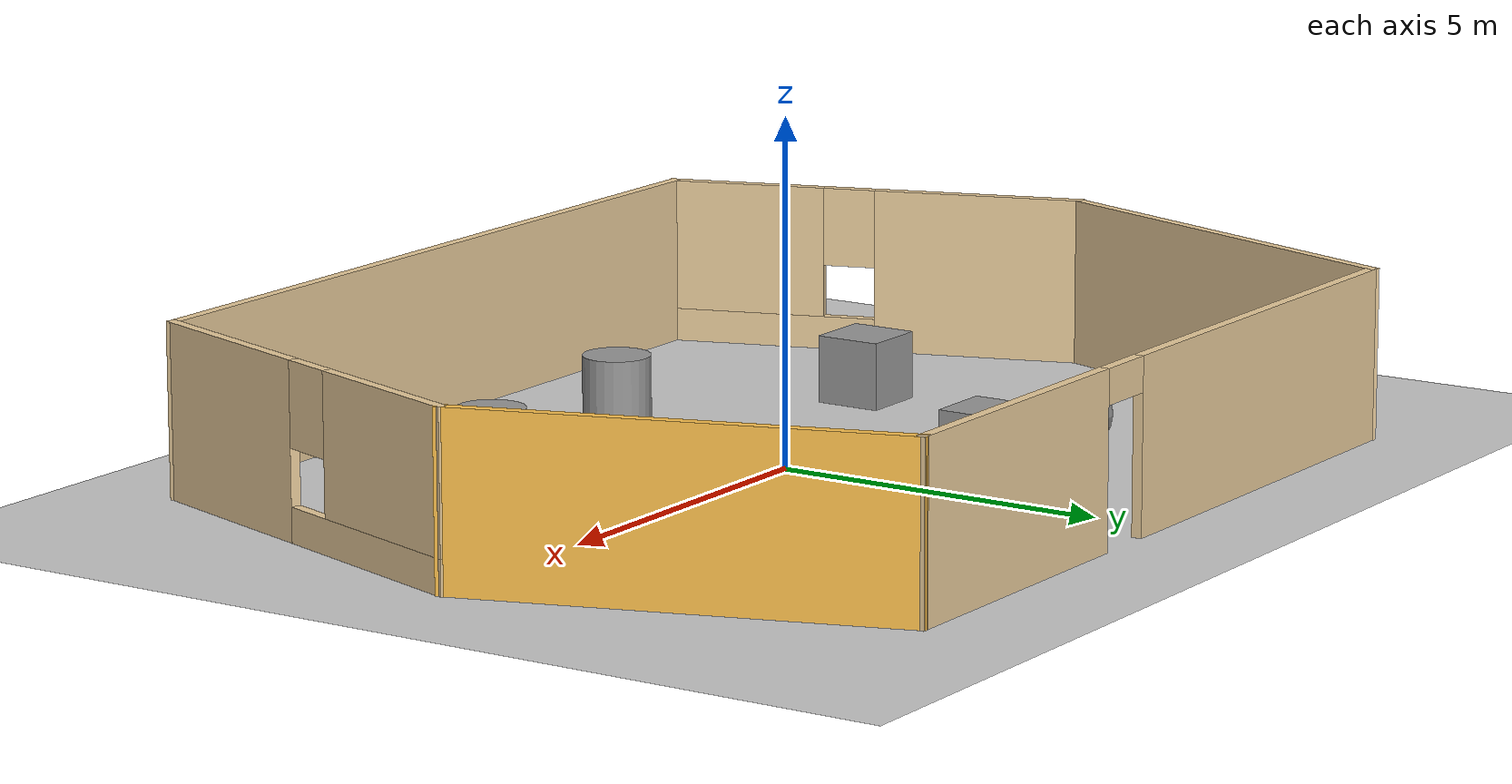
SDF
<sdf version="1.6">
 <world name="default">
  <model name="ground_plane">
   <static>1</static>
   <link name="link">
    <collision name="collision">
     <geometry><plane><normal>0 0 1</normal><size>100 100</size></plane></geometry>
     <surface>
      <contact><collide_bitmask>65535</collide_bitmask></contact>
      <friction><ode><mu>100</mu><mu2>50</mu2></ode></friction>
     </surface>
    </collision>
    <visual name="visual">
     <cast_shadows>0</cast_shadows>
     <geometry><plane><normal>0 0 1</normal><size>100 100</size></plane></geometry>
     <material>
      <script><uri>file://media/materials/scripts/gazebo.material</uri><name>Gazebo/Grey</name></script>
     </material>
    </visual>
   </link>
  </model>
  <gravity>0 0 -9.8</gravity>
  <magnetic_field>6e-06 2.3e-05 -4.2e-05</magnetic_field>
  <atmosphere type="adiabatic"/>
  <physics name="default_physics" default="0" type="ode">
   <max_step_size>0.001</max_step_size>
   <real_time_factor>1</real_time_factor>
   <real_time_update_rate>1000</real_time_update_rate>
  </physics>
  <scene><ambient>0.4 0.4 0.4 1</ambient><background>0.7 0.7 0.7 1</background><shadows>1</shadows></scene>
  <audio><device>default</device></audio>
  <spherical_coordinates>
   <surface_model>EARTH_WGS84</surface_model>
   <latitude_deg>0</latitude_deg>
   <longitude_deg>0</longitude_deg>
   <elevation>0</elevation>
   <heading_deg>0</heading_deg>
  </spherical_coordinates>
  <model name="smart_car.world">
   <link name="Wall_17">
    <collision name="Wall_17_Collision">
     <geometry><box><size>6.47455 0.15 2.5</size></box></geometry>
     <pose>0 0 1.25 0 -0 0</pose>
    </collision>
    <visual name="Wall_17_Visual">
     <pose>0 0 1.25 0 -0 0</pose>
     <geometry><box><size>6.47455 0.15 2.5</size></box></geometry>
     <material>
      <script><uri>file://media/materials/scripts/gazebo.material</uri><name>Gazebo/Grey</name></script>
      <ambient>1 0.764706 0.305882 1</ambient>
     </material>
     <meta><layer>0</layer></meta>
    </visual>
    <pose>7 3 0 0 -0 1.89255</pose>
   </link>
   <link name="Wall_19">
    <pose>0 6 0 0 -0 3.14159</pose>
    <visual name="Wall_19_Visual_0">
     <pose>-3.80046 0 1.25 0 -0 0</pose>
     <geometry><box><size>4.54908 0.15 2.5</size></box></geometry>
     <material>
      <script><uri>file://media/materials/scripts/gazebo.material</uri><name>Gazebo/Grey</name></script>
      <ambient>0.921569 0.807843 0.615686 1</ambient>
     </material>
     <meta><layer>0</layer></meta>
    </visual>
    <collision name="Wall_19_Collision_0">
     <geometry><box><size>4.54908 0.15 2.5</size></box></geometry>
     <pose>-3.80046 0 1.25 0 -0 0</pose>
    </collision>
    <visual name="Wall_19_Visual_1">
     <pose>2.72454 0 1.25 0 -0 0</pose>
     <geometry><box><size>6.70092 0.15 2.5</size></box></geometry>
     <material>
      <script><uri>file://media/materials/scripts/gazebo.material</uri><name>Gazebo/Grey</name></script>
      <ambient>0.921569 0.807843 0.615686 1</ambient>
     </material>
     <meta><layer>0</layer></meta>
    </visual>
    <collision name="Wall_19_Collision_1">
     <geometry><box><size>6.70092 0.15 2.5</size></box></geometry>
     <pose>2.72454 0 1.25 0 -0 0</pose>
    </collision>
    <visual name="Wall_19_Visual_2">
     <pose>-1.07592 0 2.25 0 -0 0</pose>
     <geometry><box><size>0.9 0.15 0.5</size></box></geometry>
     <material>
      <script><uri>file://media/materials/scripts/gazebo.material</uri><name>Gazebo/Grey</name></script>
      <ambient>0.921569 0.807843 0.615686 1</ambient>
     </material>
     <meta><layer>0</layer></meta>
    </visual>
    <collision name="Wall_19_Collision_2">
     <geometry><box><size>0.9 0.15 0.5</size></box></geometry>
     <pose>-1.07592 0 2.25 0 -0 0</pose>
    </collision>
   </link>
   <link name="Wall_21">
    <collision name="Wall_21_Collision">
     <geometry><box><size>6.47455 0.15 2.5</size></box></geometry>
     <pose>0 0 1.25 0 -0 0</pose>
    </collision>
    <visual name="Wall_21_Visual">
     <pose>0 0 1.25 0 -0 0</pose>
     <geometry><box><size>6.47455 0.15 2.5</size></box></geometry>
     <material>
      <script><uri>file://media/materials/scripts/gazebo.material</uri><name>Gazebo/Grey</name></script>
      <ambient>0.921569 0.807843 0.615686 1</ambient>
     </material>
     <meta><layer>0</layer></meta>
    </visual>
    <pose>-7 3 0 0 -0 1.24905</pose>
   </link>
   <link name="Wall_23">
    <pose>-7 -3 0 0 -0 -1.24905</pose>
    <visual name="Wall_23_Visual_0">
     <pose>-1.62614 0 1.25 0 -0 0</pose>
     <geometry><box><size>3.22227 0.15 2.5</size></box></geometry>
     <material>
      <script><uri>file://media/materials/scripts/gazebo.material</uri><name>Gazebo/Grey</name></script>
      <ambient>0.921569 0.807843 0.615686 1</ambient>
     </material>
     <meta><layer>0</layer></meta>
    </visual>
    <collision name="Wall_23_Collision_0">
     <geometry><box><size>3.22227 0.15 2.5</size></box></geometry>
     <pose>-1.62614 0 1.25 0 -0 0</pose>
    </collision>
    <visual name="Wall_23_Visual_1">
     <pose>1.61113 0 0.25 0 -0 0</pose>
     <geometry><box><size>3.25229 0.15 0.5</size></box></geometry>
     <material>
      <script><uri>file://media/materials/scripts/gazebo.material</uri><name>Gazebo/Grey</name></script>
      <ambient>0.921569 0.807843 0.615686 1</ambient>
     </material>
     <meta><layer>0</layer></meta>
    </visual>
    <collision name="Wall_23_Collision_1">
     <geometry><box><size>3.25229 0.15 0.5</size></box></geometry>
     <pose>1.61113 0 0.25 0 -0 0</pose>
    </collision>
    <visual name="Wall_23_Visual_2">
     <pose>2.01113 0 1.5 0 -0 0</pose>
     <geometry><box><size>2.45229 0.15 2</size></box></geometry>
     <material>
      <script><uri>file://media/materials/scripts/gazebo.material</uri><name>Gazebo/Grey</name></script>
      <ambient>0.921569 0.807843 0.615686 1</ambient>
     </material>
     <meta><layer>0</layer></meta>
    </visual>
    <collision name="Wall_23_Collision_2">
     <geometry><box><size>2.45229 0.15 2</size></box></geometry>
     <pose>2.01113 0 1.5 0 -0 0</pose>
    </collision>
    <visual name="Wall_23_Visual_3">
     <pose>0.384987 0 1.9 0 -0 0</pose>
     <geometry><box><size>0.8 0.15 1.2</size></box></geometry>
     <material>
      <script><uri>file://media/materials/scripts/gazebo.material</uri><name>Gazebo/Grey</name></script>
      <ambient>0.921569 0.807843 0.615686 1</ambient>
     </material>
     <meta><layer>0</layer></meta>
    </visual>
    <collision name="Wall_23_Collision_3">
     <geometry><box><size>0.8 0.15 1.2</size></box></geometry>
     <pose>0.384987 0 1.9 0 -0 0</pose>
    </collision>
   </link>
   <link name="Wall_24">
    <collision name="Wall_24_Collision">
     <geometry><box><size>12.15 0.15 2.5</size></box></geometry>
     <pose>0 0 1.25 0 -0 0</pose>
    </collision>
    <visual name="Wall_24_Visual">
     <pose>0 0 1.25 0 -0 0</pose>
     <geometry><box><size>12.15 0.15 2.5</size></box></geometry>
     <material>
      <script><uri>file://media/materials/scripts/gazebo.material</uri><name>Gazebo/Grey</name></script>
      <ambient>0.921569 0.807843 0.615686 1</ambient>
     </material>
     <meta><layer>0</layer></meta>
    </visual>
    <pose>0 -6 0 0 -0 0</pose>
   </link>
   <link name="Wall_25">
    <pose>7 -3 0 0 -0 1.24905</pose>
    <visual name="Wall_25_Visual_0">
     <pose>-1.72847 0 1.25 0 -0 0</pose>
     <geometry><box><size>3.01762 0.15 2.5</size></box></geometry>
     <material>
      <script><uri>file://media/materials/scripts/gazebo.material</uri><name>Gazebo/Grey</name></script>
      <ambient>0.921569 0.807843 0.615686 1</ambient>
     </material>
     <meta><layer>0</layer></meta>
    </visual>
    <collision name="Wall_25_Collision_0">
     <geometry><box><size>3.01762 0.15 2.5</size></box></geometry>
     <pose>-1.72847 0 1.25 0 -0 0</pose>
    </collision>
    <visual name="Wall_25_Visual_1">
     <pose>1.50881 0 0.25 0 -0 0</pose>
     <geometry><box><size>3.45693 0.15 0.5</size></box></geometry>
     <material>
      <script><uri>file://media/materials/scripts/gazebo.material</uri><name>Gazebo/Grey</name></script>
      <ambient>0.921569 0.807843 0.615686 1</ambient>
     </material>
     <meta><layer>0</layer></meta>
    </visual>
    <collision name="Wall_25_Collision_1">
     <geometry><box><size>3.45693 0.15 0.5</size></box></geometry>
     <pose>1.50881 0 0.25 0 -0 0</pose>
    </collision>
    <visual name="Wall_25_Visual_2">
     <pose>1.90881 0 1.5 0 -0 0</pose>
     <geometry><box><size>2.65693 0.15 2</size></box></geometry>
     <material>
      <script><uri>file://media/materials/scripts/gazebo.material</uri><name>Gazebo/Grey</name></script>
      <ambient>0.921569 0.807843 0.615686 1</ambient>
     </material>
     <meta><layer>0</layer></meta>
    </visual>
    <collision name="Wall_25_Collision_2">
     <geometry><box><size>2.65693 0.15 2</size></box></geometry>
     <pose>1.90881 0 1.5 0 -0 0</pose>
    </collision>
    <visual name="Wall_25_Visual_3">
     <pose>0.180343 0 1.9 0 -0 0</pose>
     <geometry><box><size>0.8 0.15 1.2</size></box></geometry>
     <material>
      <script><uri>file://media/materials/scripts/gazebo.material</uri><name>Gazebo/Grey</name></script>
      <ambient>0.921569 0.807843 0.615686 1</ambient>
     </material>
     <meta><layer>0</layer></meta>
    </visual>
    <collision name="Wall_25_Collision_3">
     <geometry><box><size>0.8 0.15 1.2</size></box></geometry>
     <pose>0.180343 0 1.9 0 -0 0</pose>
    </collision>
   </link>
   <static>1</static>
  </model>
  <model name="unit_cylinder">
   <pose>2.65 -3.15072 0.499992 -3e-06 4e-06 0</pose>
   <link name="link">
    <inertial>
     <mass>1</mass>
     <inertia><ixx>0.145833</ixx><ixy>0</ixy><ixz>0</ixz><iyy>0.145833</iyy><iyz>0</iyz><izz>0.125</izz></inertia>
    </inertial>
    <collision name="collision">
     <geometry><cylinder><radius>0.5</radius><length>1</length></cylinder></geometry>
    </collision>
    <visual name="visual">
     <geometry><cylinder><radius>0.5</radius><length>1</length></cylinder></geometry>
     <material>
      <script><name>Gazebo/Grey</name><uri>file://media/materials/scripts/gazebo.material</uri></script>
     </material>
    </visual>
   </link>
  </model>
  <model name="unit_box">
   <pose>2.62778 2 0.499995 0 1e-05 0</pose>
   <link name="link">
    <inertial>
     <mass>1</mass>
     <inertia>
      <ixx>0.166667</ixx>
      <ixy>0</ixy>
      <ixz>0</ixz>
      <iyy>0.166667</iyy>
      <iyz>0</iyz>
      <izz>0.166667</izz>
     </inertia>
    </inertial>
    <collision name="collision"><geometry><box><size>1 1 1</size></box></geometry></collision>
    <visual name="visual">
     <geometry><box><size>1 1 1</size></box></geometry>
     <material>
      <script><name>Gazebo/Grey</name><uri>file://media/materials/scripts/gazebo.material</uri></script>
     </material>
    </visual>
   </link>
  </model>
  <light name="user_directional_light_0" type="directional">
   <pose>6.5486 -17.4217 1 0 -0 0</pose>
   <diffuse>0.5 0.5 0.5 1</diffuse>
   <specular>0.1 0.1 0.1 1</specular>
   <direction>0.1 0.1 -0.9</direction>
   <attenuation>
    <range>20</range>
    <constant>0.5</constant>
    <linear>0.01</linear>
    <quadratic>0.001</quadratic>
   </attenuation>
  </light>
  <model name="unit_sphere">
   <pose>-3.26926 2.8007 0.5 0 -0 0</pose>
   <link name="link">
    <inertial>
     <mass>1</mass>
     <inertia><ixx>0.1</ixx><ixy>0</ixy><ixz>0</ixz><iyy>0.1</iyy><iyz>0</iyz><izz>0.1</izz></inertia>
    </inertial>
    <collision name="collision"><geometry><sphere><radius>0.5</radius></sphere></geometry></collision>
    <visual name="visual">
     <geometry><sphere><radius>0.5</radius></sphere></geometry>
     <material>
      <script><name>Gazebo/Grey</name><uri>file://media/materials/scripts/gazebo.material</uri></script>
     </material>
    </visual>
   </link>
  </model>
  <model name="unit_cylinder_0">
   <pose>-1.00852 -3.59173 0.499993 -3e-06 -4e-06 -0</pose>
   <link name="link">
    <inertial>
     <mass>1</mass>
     <inertia><ixx>0.145833</ixx><ixy>0</ixy><ixz>0</ixz><iyy>0.145833</iyy><iyz>0</iyz><izz>0.125</izz></inertia>
    </inertial>
    <collision name="collision">
     <geometry><cylinder><radius>0.5</radius><length>1</length></cylinder></geometry>
    </collision>
    <visual name="visual">
     <geometry><cylinder><radius>0.5</radius><length>1</length></cylinder></geometry>
     <material>
      <script><name>Gazebo/Grey</name><uri>file://media/materials/scripts/gazebo.material</uri></script>
     </material>
    </visual>
   </link>
  </model>
  <model name="unit_box_0">
   <pose>-4.14852 -1.33343 0.499995 -1e-05 -0 0</pose>
   <link name="link">
    <inertial>
     <mass>1</mass>
     <inertia>
      <ixx>0.166667</ixx>
      <ixy>0</ixy>
      <ixz>0</ixz>
      <iyy>0.166667</iyy>
      <iyz>0</iyz>
      <izz>0.166667</izz>
     </inertia>
    </inertial>
    <collision name="collision"><geometry><box><size>1 1 1</size></box></geometry></collision>
    <visual name="visual">
     <geometry><box><size>1 1 1</size></box></geometry>
     <material>
      <script><name>Gazebo/Grey</name><uri>file://media/materials/scripts/gazebo.material</uri></script>
     </material>
    </visual>
   </link>
  </model>
  <model name="unit_box_1">
   <pose>-1.13604 2.61364 0.5 0 -0 0</pose>
   <link name="link">
    <inertial>
     <mass>1</mass>
     <inertia>
      <ixx>0.166667</ixx>
      <ixy>0</ixy>
      <ixz>0</ixz>
      <iyy>0.166667</iyy>
      <iyz>0</iyz>
      <izz>0.166667</izz>
     </inertia>
    </inertial>
    <collision name="collision"><geometry><box><size>1 1 1</size></box></geometry></collision>
    <visual name="visual">
     <geometry><box><size>1 1 1</size></box></geometry>
     <material>
      <script><name>Gazebo/Grey</name><uri>file://media/materials/scripts/gazebo.material</uri></script>
     </material>
    </visual>
   </link>
  </model>
 </world>
</sdf>
